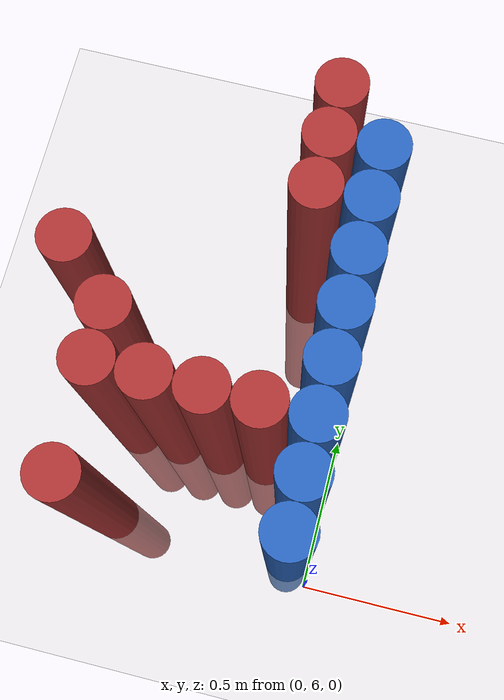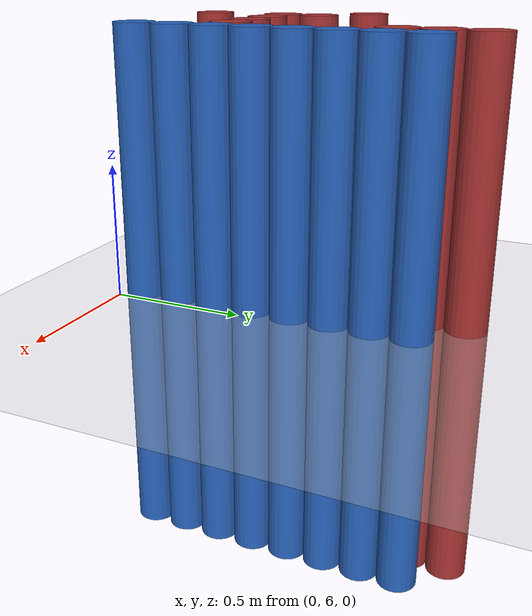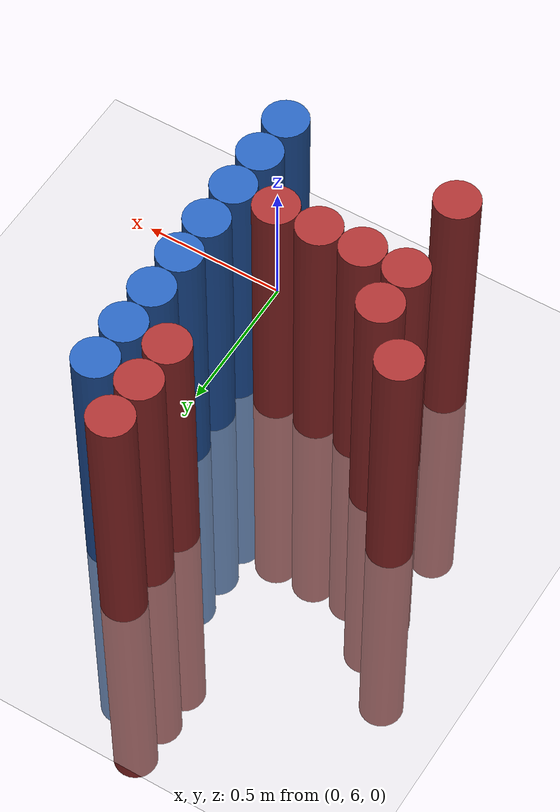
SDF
<sdf version="1.6">
 <world name="default">
  <model name="ground_plane">
   <static>1</static>
   <link name="link">
    <collision name="collision">
     <geometry><plane><normal>0 0 1</normal><size>100 100</size></plane></geometry>
     <surface><friction><ode><mu>100</mu><mu2>50</mu2></ode></friction></surface>
    </collision>
    <visual name="visual">
     <cast_shadows>0</cast_shadows>
     <geometry><plane><normal>0 0 1</normal><size>100 100</size></plane></geometry>
     <material>
      <script><uri>file://media/materials/scripts/gazebo.material</uri><name>Gazebo/Grey</name></script>
     </material>
    </visual>
   </link>
  </model>
  <model name="unit_cylinder_219">
   <static>1</static>
   <pose>-0.825000 6.675000 0.000000 0.000000 0.000000 0.000000</pose>
   <link name="link">
    <inertial>
     <mass>1</mass>
     <inertia><ixx>0.145833</ixx><ixy>0</ixy><ixz>0</ixz><iyy>0.145833</iyy><iyz>0</iyz><izz>0.125</izz></inertia>
    </inertial>
    <collision name="collision">
     <geometry><cylinder><radius>0.075000</radius><length>2</length></cylinder></geometry>
    </collision>
    <visual name="visual">
     <geometry><cylinder><radius>0.075000</radius><length>2</length></cylinder></geometry>
     <material>
      <ambient>0.648000 0.192000 0.192000 1</ambient>
      <diffuse>0.648000 0.192000 0.192000 1</diffuse>
     </material>
     <material>
      <script><name>Gazebo/Grey</name><uri>file://media/materials/scripts/gazebo.material</uri></script>
     </material>
    </visual>
   </link>
  </model>
  <model name="unit_cylinder_228">
   <static>1</static>
   <pose>-0.675000 6.075000 0.000000 0.000000 0.000000 0.000000</pose>
   <link name="link">
    <inertial>
     <mass>1</mass>
     <inertia><ixx>0.145833</ixx><ixy>0</ixy><ixz>0</ixz><iyy>0.145833</iyy><iyz>0</iyz><izz>0.125</izz></inertia>
    </inertial>
    <collision name="collision">
     <geometry><cylinder><radius>0.075000</radius><length>2</length></cylinder></geometry>
    </collision>
    <visual name="visual">
     <geometry><cylinder><radius>0.075000</radius><length>2</length></cylinder></geometry>
     <material>
      <ambient>0.648000 0.192000 0.192000 1</ambient>
      <diffuse>0.648000 0.192000 0.192000 1</diffuse>
     </material>
     <material>
      <script><name>Gazebo/Grey</name><uri>file://media/materials/scripts/gazebo.material</uri></script>
     </material>
    </visual>
   </link>
  </model>
  <model name="unit_cylinder_229">
   <static>1</static>
   <pose>-0.675000 6.375000 0.000000 0.000000 0.000000 0.000000</pose>
   <link name="link">
    <inertial>
     <mass>1</mass>
     <inertia><ixx>0.145833</ixx><ixy>0</ixy><ixz>0</ixz><iyy>0.145833</iyy><iyz>0</iyz><izz>0.125</izz></inertia>
    </inertial>
    <collision name="collision">
     <geometry><cylinder><radius>0.075000</radius><length>2</length></cylinder></geometry>
    </collision>
    <visual name="visual">
     <geometry><cylinder><radius>0.075000</radius><length>2</length></cylinder></geometry>
     <material>
      <ambient>0.648000 0.192000 0.192000 1</ambient>
      <diffuse>0.648000 0.192000 0.192000 1</diffuse>
     </material>
     <material>
      <script><name>Gazebo/Grey</name><uri>file://media/materials/scripts/gazebo.material</uri></script>
     </material>
    </visual>
   </link>
  </model>
  <model name="unit_cylinder_230">
   <static>1</static>
   <pose>-0.675000 6.525000 0.000000 0.000000 0.000000 0.000000</pose>
   <link name="link">
    <inertial>
     <mass>1</mass>
     <inertia><ixx>0.145833</ixx><ixy>0</ixy><ixz>0</ixz><iyy>0.145833</iyy><iyz>0</iyz><izz>0.125</izz></inertia>
    </inertial>
    <collision name="collision">
     <geometry><cylinder><radius>0.075000</radius><length>2</length></cylinder></geometry>
    </collision>
    <visual name="visual">
     <geometry><cylinder><radius>0.075000</radius><length>2</length></cylinder></geometry>
     <material>
      <ambient>0.648000 0.192000 0.192000 1</ambient>
      <diffuse>0.648000 0.192000 0.192000 1</diffuse>
     </material>
     <material>
      <script><name>Gazebo/Grey</name><uri>file://media/materials/scripts/gazebo.material</uri></script>
     </material>
    </visual>
   </link>
  </model>
  <model name="unit_cylinder_233">
   <static>1</static>
   <pose>-0.525000 6.375000 0.000000 0.000000 0.000000 0.000000</pose>
   <link name="link">
    <inertial>
     <mass>1</mass>
     <inertia><ixx>0.145833</ixx><ixy>0</ixy><ixz>0</ixz><iyy>0.145833</iyy><iyz>0</iyz><izz>0.125</izz></inertia>
    </inertial>
    <collision name="collision">
     <geometry><cylinder><radius>0.075000</radius><length>2</length></cylinder></geometry>
    </collision>
    <visual name="visual">
     <geometry><cylinder><radius>0.075000</radius><length>2</length></cylinder></geometry>
     <material>
      <ambient>0.648000 0.192000 0.192000 1</ambient>
      <diffuse>0.648000 0.192000 0.192000 1</diffuse>
     </material>
     <material>
      <script><name>Gazebo/Grey</name><uri>file://media/materials/scripts/gazebo.material</uri></script>
     </material>
    </visual>
   </link>
  </model>
  <model name="unit_cylinder_238">
   <static>1</static>
   <pose>-0.375000 6.375000 0.000000 0.000000 0.000000 0.000000</pose>
   <link name="link">
    <inertial>
     <mass>1</mass>
     <inertia><ixx>0.145833</ixx><ixy>0</ixy><ixz>0</ixz><iyy>0.145833</iyy><iyz>0</iyz><izz>0.125</izz></inertia>
    </inertial>
    <collision name="collision">
     <geometry><cylinder><radius>0.075000</radius><length>2</length></cylinder></geometry>
    </collision>
    <visual name="visual">
     <geometry><cylinder><radius>0.075000</radius><length>2</length></cylinder></geometry>
     <material>
      <ambient>0.648000 0.192000 0.192000 1</ambient>
      <diffuse>0.648000 0.192000 0.192000 1</diffuse>
     </material>
     <material>
      <script><name>Gazebo/Grey</name><uri>file://media/materials/scripts/gazebo.material</uri></script>
     </material>
    </visual>
   </link>
  </model>
  <model name="unit_cylinder_243">
   <static>1</static>
   <pose>-0.225000 6.375000 0.000000 0.000000 0.000000 0.000000</pose>
   <link name="link">
    <inertial>
     <mass>1</mass>
     <inertia><ixx>0.145833</ixx><ixy>0</ixy><ixz>0</ixz><iyy>0.145833</iyy><iyz>0</iyz><izz>0.125</izz></inertia>
    </inertial>
    <collision name="collision">
     <geometry><cylinder><radius>0.075000</radius><length>2</length></cylinder></geometry>
    </collision>
    <visual name="visual">
     <geometry><cylinder><radius>0.075000</radius><length>2</length></cylinder></geometry>
     <material>
      <ambient>0.648000 0.192000 0.192000 1</ambient>
      <diffuse>0.648000 0.192000 0.192000 1</diffuse>
     </material>
     <material>
      <script><name>Gazebo/Grey</name><uri>file://media/materials/scripts/gazebo.material</uri></script>
     </material>
    </visual>
   </link>
  </model>
  <model name="unit_cylinder_244">
   <static>1</static>
   <pose>-0.225000 6.975000 0.000000 0.000000 0.000000 0.000000</pose>
   <link name="link">
    <inertial>
     <mass>1</mass>
     <inertia><ixx>0.145833</ixx><ixy>0</ixy><ixz>0</ixz><iyy>0.145833</iyy><iyz>0</iyz><izz>0.125</izz></inertia>
    </inertial>
    <collision name="collision">
     <geometry><cylinder><radius>0.075000</radius><length>2</length></cylinder></geometry>
    </collision>
    <visual name="visual">
     <geometry><cylinder><radius>0.075000</radius><length>2</length></cylinder></geometry>
     <material>
      <ambient>0.648000 0.192000 0.192000 1</ambient>
      <diffuse>0.648000 0.192000 0.192000 1</diffuse>
     </material>
     <material>
      <script><name>Gazebo/Grey</name><uri>file://media/materials/scripts/gazebo.material</uri></script>
     </material>
    </visual>
   </link>
  </model>
  <model name="unit_cylinder_245">
   <static>1</static>
   <pose>-0.225000 7.125000 0.000000 0.000000 0.000000 0.000000</pose>
   <link name="link">
    <inertial>
     <mass>1</mass>
     <inertia><ixx>0.145833</ixx><ixy>0</ixy><ixz>0</ixz><iyy>0.145833</iyy><iyz>0</iyz><izz>0.125</izz></inertia>
    </inertial>
    <collision name="collision">
     <geometry><cylinder><radius>0.075000</radius><length>2</length></cylinder></geometry>
    </collision>
    <visual name="visual">
     <geometry><cylinder><radius>0.075000</radius><length>2</length></cylinder></geometry>
     <material>
      <ambient>0.648000 0.192000 0.192000 1</ambient>
      <diffuse>0.648000 0.192000 0.192000 1</diffuse>
     </material>
     <material>
      <script><name>Gazebo/Grey</name><uri>file://media/materials/scripts/gazebo.material</uri></script>
     </material>
    </visual>
   </link>
  </model>
  <model name="unit_cylinder_246">
   <static>1</static>
   <pose>-0.225000 7.275000 0.000000 0.000000 0.000000 0.000000</pose>
   <link name="link">
    <inertial>
     <mass>1</mass>
     <inertia><ixx>0.145833</ixx><ixy>0</ixy><ixz>0</ixz><iyy>0.145833</iyy><iyz>0</iyz><izz>0.125</izz></inertia>
    </inertial>
    <collision name="collision">
     <geometry><cylinder><radius>0.075000</radius><length>2</length></cylinder></geometry>
    </collision>
    <visual name="visual">
     <geometry><cylinder><radius>0.075000</radius><length>2</length></cylinder></geometry>
     <material>
      <ambient>0.648000 0.192000 0.192000 1</ambient>
      <diffuse>0.648000 0.192000 0.192000 1</diffuse>
     </material>
     <material>
      <script><name>Gazebo/Grey</name><uri>file://media/materials/scripts/gazebo.material</uri></script>
     </material>
    </visual>
   </link>
  </model>
  <model name="unit_cylinder_258">
   <static>1</static>
   <pose>-0.075000 6.075000 0.000000 0.000000 0.000000 0.000000</pose>
   <link name="link">
    <inertial>
     <mass>1</mass>
     <inertia><ixx>0.145833</ixx><ixy>0</ixy><ixz>0</ixz><iyy>0.145833</iyy><iyz>0</iyz><izz>0.125</izz></inertia>
    </inertial>
    <collision name="collision">
     <geometry><cylinder><radius>0.075000</radius><length>2</length></cylinder></geometry>
    </collision>
    <visual name="visual">
     <geometry><cylinder><radius>0.075000</radius><length>2</length></cylinder></geometry>
     <material>
      <ambient>0.152000 0.379000 0.720000 1</ambient>
      <diffuse>0.152000 0.379000 0.720000 1</diffuse>
     </material>
     <material>
      <script><name>Gazebo/Grey</name><uri>file://media/materials/scripts/gazebo.material</uri></script>
     </material>
    </visual>
   </link>
  </model>
  <model name="unit_cylinder_259">
   <static>1</static>
   <pose>-0.075000 6.225000 0.000000 0.000000 0.000000 0.000000</pose>
   <link name="link">
    <inertial>
     <mass>1</mass>
     <inertia><ixx>0.145833</ixx><ixy>0</ixy><ixz>0</ixz><iyy>0.145833</iyy><iyz>0</iyz><izz>0.125</izz></inertia>
    </inertial>
    <collision name="collision">
     <geometry><cylinder><radius>0.075000</radius><length>2</length></cylinder></geometry>
    </collision>
    <visual name="visual">
     <geometry><cylinder><radius>0.075000</radius><length>2</length></cylinder></geometry>
     <material>
      <ambient>0.152000 0.379000 0.720000 1</ambient>
      <diffuse>0.152000 0.379000 0.720000 1</diffuse>
     </material>
     <material>
      <script><name>Gazebo/Grey</name><uri>file://media/materials/scripts/gazebo.material</uri></script>
     </material>
    </visual>
   </link>
  </model>
  <model name="unit_cylinder_260">
   <static>1</static>
   <pose>-0.075000 6.375000 0.000000 0.000000 0.000000 0.000000</pose>
   <link name="link">
    <inertial>
     <mass>1</mass>
     <inertia><ixx>0.145833</ixx><ixy>0</ixy><ixz>0</ixz><iyy>0.145833</iyy><iyz>0</iyz><izz>0.125</izz></inertia>
    </inertial>
    <collision name="collision">
     <geometry><cylinder><radius>0.075000</radius><length>2</length></cylinder></geometry>
    </collision>
    <visual name="visual">
     <geometry><cylinder><radius>0.075000</radius><length>2</length></cylinder></geometry>
     <material>
      <ambient>0.152000 0.379000 0.720000 1</ambient>
      <diffuse>0.152000 0.379000 0.720000 1</diffuse>
     </material>
     <material>
      <script><name>Gazebo/Grey</name><uri>file://media/materials/scripts/gazebo.material</uri></script>
     </material>
    </visual>
   </link>
  </model>
  <model name="unit_cylinder_261">
   <static>1</static>
   <pose>-0.075000 6.525000 0.000000 0.000000 0.000000 0.000000</pose>
   <link name="link">
    <inertial>
     <mass>1</mass>
     <inertia><ixx>0.145833</ixx><ixy>0</ixy><ixz>0</ixz><iyy>0.145833</iyy><iyz>0</iyz><izz>0.125</izz></inertia>
    </inertial>
    <collision name="collision">
     <geometry><cylinder><radius>0.075000</radius><length>2</length></cylinder></geometry>
    </collision>
    <visual name="visual">
     <geometry><cylinder><radius>0.075000</radius><length>2</length></cylinder></geometry>
     <material>
      <ambient>0.152000 0.379000 0.720000 1</ambient>
      <diffuse>0.152000 0.379000 0.720000 1</diffuse>
     </material>
     <material>
      <script><name>Gazebo/Grey</name><uri>file://media/materials/scripts/gazebo.material</uri></script>
     </material>
    </visual>
   </link>
  </model>
  <model name="unit_cylinder_262">
   <static>1</static>
   <pose>-0.075000 6.675000 0.000000 0.000000 0.000000 0.000000</pose>
   <link name="link">
    <inertial>
     <mass>1</mass>
     <inertia><ixx>0.145833</ixx><ixy>0</ixy><ixz>0</ixz><iyy>0.145833</iyy><iyz>0</iyz><izz>0.125</izz></inertia>
    </inertial>
    <collision name="collision">
     <geometry><cylinder><radius>0.075000</radius><length>2</length></cylinder></geometry>
    </collision>
    <visual name="visual">
     <geometry><cylinder><radius>0.075000</radius><length>2</length></cylinder></geometry>
     <material>
      <ambient>0.152000 0.379000 0.720000 1</ambient>
      <diffuse>0.152000 0.379000 0.720000 1</diffuse>
     </material>
     <material>
      <script><name>Gazebo/Grey</name><uri>file://media/materials/scripts/gazebo.material</uri></script>
     </material>
    </visual>
   </link>
  </model>
  <model name="unit_cylinder_263">
   <static>1</static>
   <pose>-0.075000 6.825000 0.000000 0.000000 0.000000 0.000000</pose>
   <link name="link">
    <inertial>
     <mass>1</mass>
     <inertia><ixx>0.145833</ixx><ixy>0</ixy><ixz>0</ixz><iyy>0.145833</iyy><iyz>0</iyz><izz>0.125</izz></inertia>
    </inertial>
    <collision name="collision">
     <geometry><cylinder><radius>0.075000</radius><length>2</length></cylinder></geometry>
    </collision>
    <visual name="visual">
     <geometry><cylinder><radius>0.075000</radius><length>2</length></cylinder></geometry>
     <material>
      <ambient>0.152000 0.379000 0.720000 1</ambient>
      <diffuse>0.152000 0.379000 0.720000 1</diffuse>
     </material>
     <material>
      <script><name>Gazebo/Grey</name><uri>file://media/materials/scripts/gazebo.material</uri></script>
     </material>
    </visual>
   </link>
  </model>
  <model name="unit_cylinder_264">
   <static>1</static>
   <pose>-0.075000 6.975000 0.000000 0.000000 0.000000 0.000000</pose>
   <link name="link">
    <inertial>
     <mass>1</mass>
     <inertia><ixx>0.145833</ixx><ixy>0</ixy><ixz>0</ixz><iyy>0.145833</iyy><iyz>0</iyz><izz>0.125</izz></inertia>
    </inertial>
    <collision name="collision">
     <geometry><cylinder><radius>0.075000</radius><length>2</length></cylinder></geometry>
    </collision>
    <visual name="visual">
     <geometry><cylinder><radius>0.075000</radius><length>2</length></cylinder></geometry>
     <material>
      <ambient>0.152000 0.379000 0.720000 1</ambient>
      <diffuse>0.152000 0.379000 0.720000 1</diffuse>
     </material>
     <material>
      <script><name>Gazebo/Grey</name><uri>file://media/materials/scripts/gazebo.material</uri></script>
     </material>
    </visual>
   </link>
  </model>
  <model name="unit_cylinder_265">
   <static>1</static>
   <pose>-0.075000 7.125000 0.000000 0.000000 0.000000 0.000000</pose>
   <link name="link">
    <inertial>
     <mass>1</mass>
     <inertia><ixx>0.145833</ixx><ixy>0</ixy><ixz>0</ixz><iyy>0.145833</iyy><iyz>0</iyz><izz>0.125</izz></inertia>
    </inertial>
    <collision name="collision">
     <geometry><cylinder><radius>0.075000</radius><length>2</length></cylinder></geometry>
    </collision>
    <visual name="visual">
     <geometry><cylinder><radius>0.075000</radius><length>2</length></cylinder></geometry>
     <material>
      <ambient>0.152000 0.379000 0.720000 1</ambient>
      <diffuse>0.152000 0.379000 0.720000 1</diffuse>
     </material>
     <material>
      <script><name>Gazebo/Grey</name><uri>file://media/materials/scripts/gazebo.material</uri></script>
     </material>
    </visual>
   </link>
  </model>
 </world>
</sdf>
